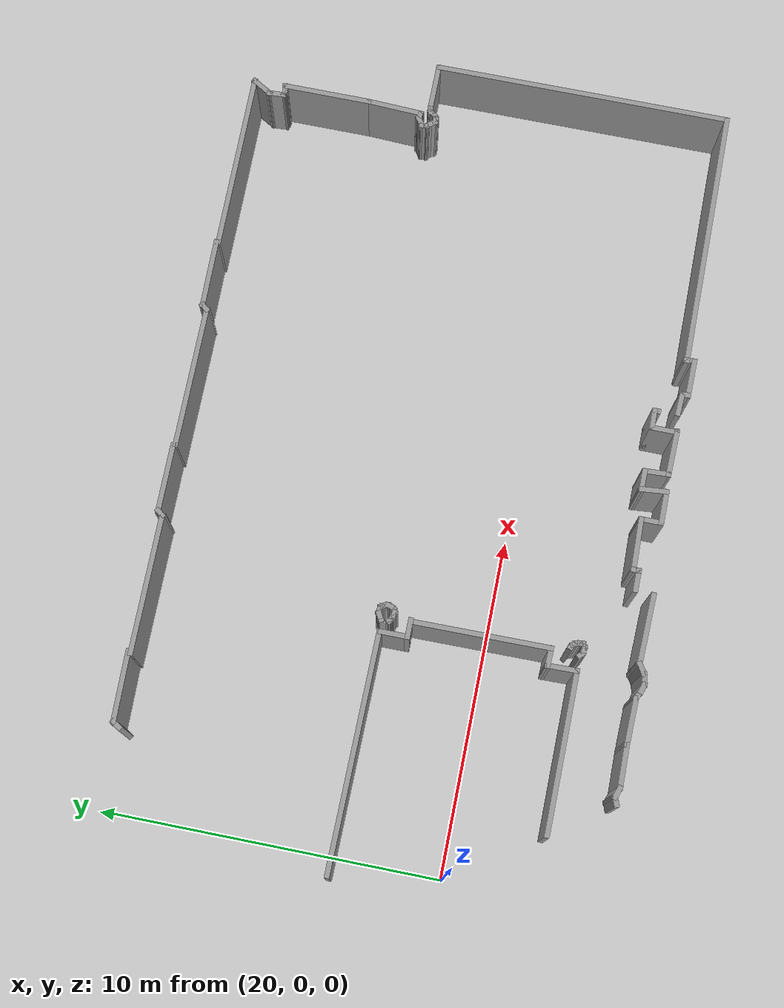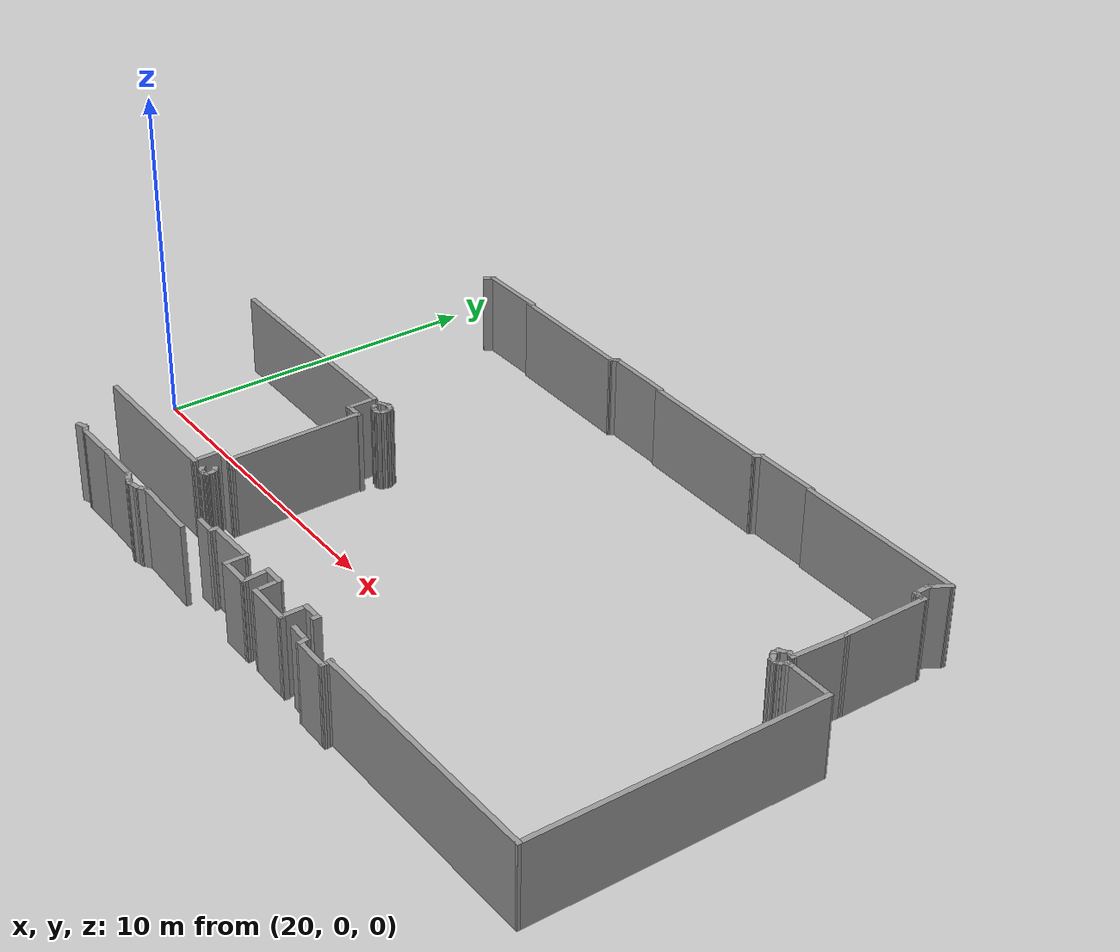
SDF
<sdf version="1.6">
 <model name="3_e">
  <pose>28.6843 2.78166 0 0 -0 0</pose>
  <link name="Wall_100">
   <collision name="Wall_100_Collision">
    <geometry><box><size>1.07773 0.15 2.5</size></box></geometry>
    <pose>0 0 1.25 0 -0 0</pose>
   </collision>
   <visual name="Wall_100_Visual">
    <pose>0 0 1.25 0 -0 0</pose>
    <geometry><box><size>1.07773 0.15 2.5</size></box></geometry>
    <material>
     <script><uri>file://media/materials/scripts/gazebo.material</uri><name>Gazebo/Grey</name></script>
     <ambient>1 1 1 1</ambient>
    </material>
   </visual>
   <pose>2.77623 -6.99337 0 0 -0 0</pose>
  </link>
  <link name="Wall_101">
   <collision name="Wall_101_Collision">
    <geometry><box><size>0.867395 0.15 2.5</size></box></geometry>
    <pose>0 0 1.25 0 -0 0</pose>
   </collision>
   <visual name="Wall_101_Visual">
    <pose>0 0 1.25 0 -0 0</pose>
    <geometry><box><size>0.867395 0.15 2.5</size></box></geometry>
    <material>
     <script><uri>file://media/materials/scripts/gazebo.material</uri><name>Gazebo/Grey</name></script>
     <ambient>1 1 1 1</ambient>
    </material>
   </visual>
   <pose>3.20967 -6.63596 0 0 -0 1.6557</pose>
  </link>
  <link name="Wall_102">
   <collision name="Wall_102_Collision">
    <geometry><box><size>0.697515 0.15 2.5</size></box></geometry>
    <pose>0 0 1.25 0 -0 0</pose>
   </collision>
   <visual name="Wall_102_Visual">
    <pose>0 0 1.25 0 -0 0</pose>
    <geometry><box><size>0.697515 0.15 2.5</size></box></geometry>
    <material>
     <script><uri>file://media/materials/scripts/gazebo.material</uri><name>Gazebo/Grey</name></script>
     <ambient>1 1 1 1</ambient>
    </material>
   </visual>
   <pose>3.45301 -6.27856 0 0 -0 0</pose>
  </link>
  <link name="Wall_103">
   <collision name="Wall_103_Collision">
    <geometry><box><size>0.835069 0.15 2.5</size></box></geometry>
    <pose>0 0 1.25 0 -0 0</pose>
   </collision>
   <visual name="Wall_103_Visual">
    <pose>0 0 1.25 0 -0 0</pose>
    <geometry><box><size>0.835069 0.15 2.5</size></box></geometry>
    <material>
     <script><uri>file://media/materials/scripts/gazebo.material</uri><name>Gazebo/Grey</name></script>
     <ambient>1 1 1 1</ambient>
    </material>
   </visual>
   <pose>3.74198 -6.62076 0 0 0 -1.52638</pose>
  </link>
  <link name="Wall_104">
   <collision name="Wall_104_Collision">
    <geometry><box><size>1.45831 0.15 2.5</size></box></geometry>
    <pose>0 0 1.25 0 -0 0</pose>
   </collision>
   <visual name="Wall_104_Visual">
    <pose>0 0 1.25 0 -0 0</pose>
    <geometry><box><size>1.45831 0.15 2.5</size></box></geometry>
    <material>
     <script><uri>file://media/materials/scripts/gazebo.material</uri><name>Gazebo/Grey</name></script>
     <ambient>1 1 1 1</ambient>
    </material>
   </visual>
   <pose>4.41117 -6.97816 0 0 0 -0.023252</pose>
  </link>
  <link name="Wall_106">
   <collision name="Wall_106_Collision">
    <geometry><box><size>0.88002 0.15 2.5</size></box></geometry>
    <pose>0 0 1.25 0 -0 0</pose>
   </collision>
   <visual name="Wall_106_Visual">
    <pose>0 0 1.25 0 -0 0</pose>
    <geometry><box><size>0.88002 0.15 2.5</size></box></geometry>
    <material>
     <script><uri>file://media/materials/scripts/gazebo.material</uri><name>Gazebo/Grey</name></script>
     <ambient>1 1 1 1</ambient>
    </material>
   </visual>
   <pose>5.03472 -6.62836 0 0 -0 1.5708</pose>
  </link>
  <link name="Wall_107">
   <collision name="Wall_107_Collision">
    <geometry><box><size>0.667097 0.15 2.5</size></box></geometry>
    <pose>0 0 1.25 0 -0 0</pose>
   </collision>
   <visual name="Wall_107_Visual">
    <pose>0 0 1.25 0 -0 0</pose>
    <geometry><box><size>0.667097 0.15 2.5</size></box></geometry>
    <material>
     <script><uri>file://media/materials/scripts/gazebo.material</uri><name>Gazebo/Grey</name></script>
     <ambient>1 1 1 1</ambient>
    </material>
   </visual>
   <pose>5.29327 -6.26335 0 0 -0 0</pose>
  </link>
  <link name="Wall_108">
   <collision name="Wall_108_Collision">
    <geometry><box><size>0.25 0.15 2.5</size></box></geometry>
    <pose>0 0 1.25 0 -0 0</pose>
   </collision>
   <visual name="Wall_108_Visual">
    <pose>0 0 1.25 0 -0 0</pose>
    <geometry><box><size>0.25 0.15 2.5</size></box></geometry>
    <material>
     <script><uri>file://media/materials/scripts/gazebo.material</uri><name>Gazebo/Grey</name></script>
     <ambient>1 1 1 1</ambient>
    </material>
   </visual>
   <pose>5.55182 -6.31335 0 0 0 -1.5708</pose>
  </link>
  <link name="Wall_110">
   <collision name="Wall_110_Collision">
    <geometry><box><size>0.728732 0.15 2.5</size></box></geometry>
    <pose>0 0 1.25 0 -0 0</pose>
   </collision>
   <visual name="Wall_110_Visual">
    <pose>0 0 1.25 0 -0 0</pose>
    <geometry><box><size>0.728732 0.15 2.5</size></box></geometry>
    <material>
     <script><uri>file://media/materials/scripts/gazebo.material</uri><name>Gazebo/Grey</name></script>
     <ambient>1 1 1 1</ambient>
    </material>
   </visual>
   <pose>5.88641 -6.94774 0 0 0 -0.052583</pose>
  </link>
  <link name="Wall_111">
   <collision name="Wall_111_Collision">
    <geometry><box><size>0.317986 0.15 2.5</size></box></geometry>
    <pose>0 0 1.25 0 -0 0</pose>
   </collision>
   <visual name="Wall_111_Visual">
    <pose>0 0 1.25 0 -0 0</pose>
    <geometry><box><size>0.317986 0.15 2.5</size></box></geometry>
    <material>
     <script><uri>file://media/materials/scripts/gazebo.material</uri><name>Gazebo/Grey</name></script>
     <ambient>1 1 1 1</ambient>
    </material>
   </visual>
   <pose>6.18299 -7.0466 0 0 0 -1.48014</pose>
  </link>
  <link name="Wall_112">
   <collision name="Wall_112_Collision">
    <geometry><box><size>1.19951 0.15 2.5</size></box></geometry>
    <pose>0 0 1.25 0 -0 0</pose>
   </collision>
   <visual name="Wall_112_Visual">
    <pose>0 0 1.25 0 -0 0</pose>
    <geometry><box><size>1.19951 0.15 2.5</size></box></geometry>
    <material>
     <script><uri>file://media/materials/scripts/gazebo.material</uri><name>Gazebo/Grey</name></script>
     <ambient>1 1 1 1</ambient>
    </material>
   </visual>
   <pose>6.71529 -7.13785 0 0 0 -0.014492</pose>
  </link>
  <link name="Wall_113">
   <collision name="Wall_113_Collision">
    <geometry><box><size>0.39334 0.15 2.5</size></box></geometry>
    <pose>0 0 1.25 0 -0 0</pose>
   </collision>
   <visual name="Wall_113_Visual">
    <pose>0 0 1.25 0 -0 0</pose>
    <geometry><box><size>0.39334 0.15 2.5</size></box></geometry>
    <material>
     <script><uri>file://media/materials/scripts/gazebo.material</uri><name>Gazebo/Grey</name></script>
     <ambient>1 1 1 1</ambient>
    </material>
   </visual>
   <pose>7.23999 -7.02379 0 0 -0 1.5708</pose>
  </link>
  <link name="Wall_117">
   <collision name="Wall_117_Collision">
    <geometry><box><size>7.80038 0.15 2.5</size></box></geometry>
    <pose>0 0 1.25 0 -0 0</pose>
   </collision>
   <visual name="Wall_117_Visual">
    <pose>0 0 1.25 0 -0 0</pose>
    <geometry><box><size>7.80038 0.15 2.5</size></box></geometry>
    <material>
     <script><uri>file://media/materials/scripts/gazebo.material</uri><name>Gazebo/Grey</name></script>
     <ambient>1 1 1 1</ambient>
    </material>
   </visual>
   <pose>11.0437 -6.90568 0 0 -0 0.005964</pose>
  </link>
  <link name="Wall_119">
   <collision name="Wall_119_Collision">
    <geometry><box><size>8.94846 0.15 2.5</size></box></geometry>
    <pose>0 0 1.25 0 -0 0</pose>
   </collision>
   <visual name="Wall_119_Visual">
    <pose>0 0 1.25 0 -0 0</pose>
    <geometry><box><size>8.94846 0.15 2.5</size></box></geometry>
    <material>
     <script><uri>file://media/materials/scripts/gazebo.material</uri><name>Gazebo/Grey</name></script>
     <ambient>1 1 1 1</ambient>
    </material>
   </visual>
   <pose>14.858 -2.48364 0 0 -0 1.57324</pose>
  </link>
  <link name="Wall_121">
   <collision name="Wall_121_Collision">
    <geometry><box><size>1.5 0.15 2.5</size></box></geometry>
    <pose>0 0 1.25 0 -0 0</pose>
   </collision>
   <visual name="Wall_121_Visual">
    <pose>0 0 1.25 0 -0 0</pose>
    <geometry><box><size>1.5 0.15 2.5</size></box></geometry>
    <material>
     <script><uri>file://media/materials/scripts/gazebo.material</uri><name>Gazebo/Grey</name></script>
     <ambient>1 1 1 1</ambient>
    </material>
   </visual>
   <pose>14.1722 1.91559 0 0 -0 3.14159</pose>
  </link>
  <link name="Wall_122">
   <collision name="Wall_122_Collision">
    <geometry><box><size>0.274193 0.15 2.5</size></box></geometry>
    <pose>0 0 1.25 0 -0 0</pose>
   </collision>
   <visual name="Wall_122_Visual">
    <pose>0 0 1.25 0 -0 0</pose>
    <geometry><box><size>0.274193 0.15 2.5</size></box></geometry>
    <material>
     <script><uri>file://media/materials/scripts/gazebo.material</uri><name>Gazebo/Grey</name></script>
     <ambient>1 1 1 1</ambient>
    </material>
   </visual>
   <pose>13.4377 1.8981 0 0 0 -2.85607</pose>
  </link>
  <link name="Wall_123">
   <collision name="Wall_123_Collision">
    <geometry><box><size>0.315001 0.15 2.5</size></box></geometry>
    <pose>0 0 1.25 0 -0 0</pose>
   </collision>
   <visual name="Wall_123_Visual">
    <pose>0 0 1.25 0 -0 0</pose>
    <geometry><box><size>0.315001 0.15 2.5</size></box></geometry>
    <material>
     <script><uri>file://media/materials/scripts/gazebo.material</uri><name>Gazebo/Grey</name></script>
     <ambient>1 1 1 1</ambient>
    </material>
   </visual>
   <pose>13.3344 1.81065 0 0 0 -2.1294</pose>
  </link>
  <link name="Wall_124">
   <collision name="Wall_124_Collision">
    <geometry><box><size>0.251984 0.15 2.5</size></box></geometry>
    <pose>0 0 1.25 0 -0 0</pose>
   </collision>
   <visual name="Wall_124_Visual">
    <pose>0 0 1.25 0 -0 0</pose>
    <geometry><box><size>0.251984 0.15 2.5</size></box></geometry>
    <material>
     <script><uri>file://media/materials/scripts/gazebo.material</uri><name>Gazebo/Grey</name></script>
     <ambient>1 1 1 1</ambient>
    </material>
   </visual>
   <pose>13.2469 1.71446 0 0 0 -2.60117</pose>
  </link>
  <link name="Wall_125">
   <collision name="Wall_125_Collision">
    <geometry><box><size>0.27243 0.15 2.5</size></box></geometry>
    <pose>0 0 1.25 0 -0 0</pose>
   </collision>
   <visual name="Wall_125_Visual">
    <pose>0 0 1.25 0 -0 0</pose>
    <geometry><box><size>0.27243 0.15 2.5</size></box></geometry>
    <material>
     <script><uri>file://media/materials/scripts/gazebo.material</uri><name>Gazebo/Grey</name></script>
     <ambient>1 1 1 1</ambient>
    </material>
   </visual>
   <pose>13.142 1.68822 0 0 -0 3.14159</pose>
  </link>
  <link name="Wall_126">
   <collision name="Wall_126_Collision">
    <geometry><box><size>0.300455 0.15 2.5</size></box></geometry>
    <pose>0 0 1.25 0 -0 0</pose>
   </collision>
   <visual name="Wall_126_Visual">
    <pose>0 0 1.25 0 -0 0</pose>
    <geometry><box><size>0.300455 0.15 2.5</size></box></geometry>
    <material>
     <script><uri>file://media/materials/scripts/gazebo.material</uri><name>Gazebo/Grey</name></script>
     <ambient>1 1 1 1</ambient>
    </material>
   </visual>
   <pose>13.037 1.74944 0 0 -0 2.19105</pose>
  </link>
  <link name="Wall_127">
   <collision name="Wall_127_Collision">
    <geometry><box><size>0.273673 0.15 2.5</size></box></geometry>
    <pose>0 0 1.25 0 -0 0</pose>
   </collision>
   <visual name="Wall_127_Visual">
    <pose>0 0 1.25 0 -0 0</pose>
    <geometry><box><size>0.273673 0.15 2.5</size></box></geometry>
    <material>
     <script><uri>file://media/materials/scripts/gazebo.material</uri><name>Gazebo/Grey</name></script>
     <ambient>1 1 1 1</ambient>
    </material>
   </visual>
   <pose>12.9496 1.85438 0 0 -0 2.35619</pose>
  </link>
  <link name="Wall_128">
   <collision name="Wall_128_Collision">
    <geometry><box><size>0.307411 0.15 2.5</size></box></geometry>
    <pose>0 0 1.25 0 -0 0</pose>
   </collision>
   <visual name="Wall_128_Visual">
    <pose>0 0 1.25 0 -0 0</pose>
    <geometry><box><size>0.307411 0.15 2.5</size></box></geometry>
    <material>
     <script><uri>file://media/materials/scripts/gazebo.material</uri><name>Gazebo/Grey</name></script>
     <ambient>1 1 1 1</ambient>
    </material>
   </visual>
   <pose>12.9058 1.97681 0 0 -0 1.5708</pose>
  </link>
  <link name="Wall_129">
   <collision name="Wall_129_Collision">
    <geometry><box><size>0.276123 0.15 2.5</size></box></geometry>
    <pose>0 0 1.25 0 -0 0</pose>
   </collision>
   <visual name="Wall_129_Visual">
    <pose>0 0 1.25 0 -0 0</pose>
    <geometry><box><size>0.276123 0.15 2.5</size></box></geometry>
    <material>
     <script><uri>file://media/materials/scripts/gazebo.material</uri><name>Gazebo/Grey</name></script>
     <ambient>1 1 1 1</ambient>
    </material>
   </visual>
   <pose>12.9583 2.09049 0 0 -0 0.588003</pose>
  </link>
  <link name="Wall_130">
   <collision name="Wall_130_Collision">
    <geometry><box><size>0.276123 0.15 2.5</size></box></geometry>
    <pose>0 0 1.25 0 -0 0</pose>
   </collision>
   <visual name="Wall_130_Visual">
    <pose>0 0 1.25 0 -0 0</pose>
    <geometry><box><size>0.276123 0.15 2.5</size></box></geometry>
    <material>
     <script><uri>file://media/materials/scripts/gazebo.material</uri><name>Gazebo/Grey</name></script>
     <ambient>1 1 1 1</ambient>
    </material>
   </visual>
   <pose>13.0633 2.16045 0 0 -0 0.588003</pose>
  </link>
  <link name="Wall_131">
   <collision name="Wall_131_Collision">
    <geometry><box><size>0.31125 0.15 2.5</size></box></geometry>
    <pose>0 0 1.25 0 -0 0</pose>
   </collision>
   <visual name="Wall_131_Visual">
    <pose>0 0 1.25 0 -0 0</pose>
    <geometry><box><size>0.31125 0.15 2.5</size></box></geometry>
    <material>
     <script><uri>file://media/materials/scripts/gazebo.material</uri><name>Gazebo/Grey</name></script>
     <ambient>1 1 1 1</ambient>
    </material>
   </visual>
   <pose>13.1944 2.17794 0 0 0 -0.218669</pose>
  </link>
  <link name="Wall_132">
   <collision name="Wall_132_Collision">
    <geometry><box><size>1.76061 0.15 2.5</size></box></geometry>
    <pose>0 0 1.25 0 -0 0</pose>
   </collision>
   <visual name="Wall_132_Visual">
    <pose>0 0 1.25 0 -0 0</pose>
    <geometry><box><size>1.76061 0.15 2.5</size></box></geometry>
    <material>
     <script><uri>file://media/materials/scripts/gazebo.material</uri><name>Gazebo/Grey</name></script>
     <ambient>1 1 1 1</ambient>
    </material>
   </visual>
   <pose>13.3081 2.965 0 0 -0 1.52734</pose>
  </link>
  <link name="Wall_134">
   <collision name="Wall_134_Collision">
    <geometry><box><size>2.72104 0.15 2.5</size></box></geometry>
    <pose>0 0 1.25 0 -0 0</pose>
   </collision>
   <visual name="Wall_134_Visual">
    <pose>0 0 1.25 0 -0 0</pose>
    <geometry><box><size>2.72104 0.15 2.5</size></box></geometry>
    <material>
     <script><uri>file://media/materials/scripts/gazebo.material</uri><name>Gazebo/Grey</name></script>
     <ambient>1 1 1 1</ambient>
    </material>
   </visual>
   <pose>13.3431 5.05506 0 0 -0 1.5708</pose>
  </link>
  <link name="Wall_135">
   <collision name="Wall_135_Collision">
    <geometry><box><size>0.25 0.15 2.5</size></box></geometry>
    <pose>0 0 1.25 0 -0 0</pose>
   </collision>
   <visual name="Wall_135_Visual">
    <pose>0 0 1.25 0 -0 0</pose>
    <geometry><box><size>0.25 0.15 2.5</size></box></geometry>
    <material>
     <script><uri>file://media/materials/scripts/gazebo.material</uri><name>Gazebo/Grey</name></script>
     <ambient>1 1 1 1</ambient>
    </material>
   </visual>
   <pose>13.2948 6.32764 0 0 0 -2.87979</pose>
  </link>
  <link name="Wall_136">
   <collision name="Wall_136_Collision">
    <geometry><box><size>0.25 0.15 2.5</size></box></geometry>
    <pose>0 0 1.25 0 -0 0</pose>
   </collision>
   <visual name="Wall_136_Visual">
    <pose>0 0 1.25 0 -0 0</pose>
    <geometry><box><size>0.25 0.15 2.5</size></box></geometry>
    <material>
     <script><uri>file://media/materials/scripts/gazebo.material</uri><name>Gazebo/Grey</name></script>
     <ambient>1 1 1 1</ambient>
    </material>
   </visual>
   <pose>13.1965 6.3147 0 0 -0 3.14159</pose>
  </link>
  <link name="Wall_137">
   <collision name="Wall_137_Collision">
    <geometry><box><size>0.25 0.15 2.5</size></box></geometry>
    <pose>0 0 1.25 0 -0 0</pose>
   </collision>
   <visual name="Wall_137_Visual">
    <pose>0 0 1.25 0 -0 0</pose>
    <geometry><box><size>0.25 0.15 2.5</size></box></geometry>
    <material>
     <script><uri>file://media/materials/scripts/gazebo.material</uri><name>Gazebo/Grey</name></script>
     <ambient>1 1 1 1</ambient>
    </material>
   </visual>
   <pose>13.0982 6.32764 0 0 -0 2.87979</pose>
  </link>
  <link name="Wall_138">
   <collision name="Wall_138_Collision">
    <geometry><box><size>0.15 0.15 2.5</size></box></geometry>
    <pose>0 0 1.25 0 -0 0</pose>
   </collision>
   <visual name="Wall_138_Visual">
    <pose>0 0 1.25 0 -0 0</pose>
    <geometry><box><size>0.15 0.15 2.5</size></box></geometry>
    <material>
     <script><uri>file://media/materials/scripts/gazebo.material</uri><name>Gazebo/Grey</name></script>
     <ambient>1 1 1 1</ambient>
    </material>
   </visual>
   <pose>13.0499 6.34058 0 0 -0 0</pose>
  </link>
  <link name="Wall_139">
   <collision name="Wall_139_Collision">
    <geometry><box><size>0.568581 0.15 2.5</size></box></geometry>
    <pose>0 0 1.25 0 -0 0</pose>
   </collision>
   <visual name="Wall_139_Visual">
    <pose>0 0 1.25 0 -0 0</pose>
    <geometry><box><size>0.568581 0.15 2.5</size></box></geometry>
    <material>
     <script><uri>file://media/materials/scripts/gazebo.material</uri><name>Gazebo/Grey</name></script>
     <ambient>1 1 1 1</ambient>
    </material>
   </visual>
   <pose>13.0396 6.54962 0 0 -0 1.62</pose>
  </link>
  <link name="Wall_140">
   <collision name="Wall_140_Collision">
    <geometry><box><size>0.75 0.15 2.5</size></box></geometry>
    <pose>0 0 1.25 0 -0 0</pose>
   </collision>
   <visual name="Wall_140_Visual">
    <pose>0 0 1.25 0 -0 0</pose>
    <geometry><box><size>0.75 0.15 2.5</size></box></geometry>
    <material>
     <script><uri>file://media/materials/scripts/gazebo.material</uri><name>Gazebo/Grey</name></script>
     <ambient>1 1 1 1</ambient>
    </material>
   </visual>
   <pose>13.1693 7.00846 0 0 -0 1.0472</pose>
  </link>
  <link name="Wall_142">
   <collision name="Wall_142_Collision">
    <geometry><box><size>5.3732 0.15 2.5</size></box></geometry>
    <pose>0 0 1.25 0 -0 0</pose>
   </collision>
   <visual name="Wall_142_Visual">
    <pose>0 0 1.25 0 -0 0</pose>
    <geometry><box><size>5.3732 0.15 2.5</size></box></geometry>
    <material>
     <script><uri>file://media/materials/scripts/gazebo.material</uri><name>Gazebo/Grey</name></script>
     <ambient>1 1 1 1</ambient>
    </material>
   </visual>
   <pose>10.7078 7.25589 0 0 0 -3.13685</pose>
  </link>
  <link name="Wall_144">
   <collision name="Wall_144_Collision">
    <geometry><box><size>2.13953 0.15 2.5</size></box></geometry>
    <pose>0 0 1.25 0 -0 0</pose>
   </collision>
   <visual name="Wall_144_Visual">
    <pose>0 0 1.25 0 -0 0</pose>
    <geometry><box><size>2.13953 0.15 2.5</size></box></geometry>
    <material>
     <script><uri>file://media/materials/scripts/gazebo.material</uri><name>Gazebo/Grey</name></script>
     <ambient>1 1 1 1</ambient>
    </material>
   </visual>
   <pose>7.103 7.28679 0 0 -0 0.01156</pose>
  </link>
  <link name="Wall_146">
   <collision name="Wall_146_Collision">
    <geometry><box><size>4.3015 0.15 2.5</size></box></geometry>
    <pose>0 0 1.25 0 -0 0</pose>
   </collision>
   <visual name="Wall_146_Visual">
    <pose>0 0 1.25 0 -0 0</pose>
    <geometry><box><size>4.3015 0.15 2.5</size></box></geometry>
    <material>
     <script><uri>file://media/materials/scripts/gazebo.material</uri><name>Gazebo/Grey</name></script>
     <ambient>1 1 1 1</ambient>
    </material>
   </visual>
   <pose>3.9175 7.12579 0 0 -0 0</pose>
  </link>
  <link name="Wall_147">
   <collision name="Wall_147_Collision">
    <geometry><box><size>0.338614 0.15 2.5</size></box></geometry>
    <pose>0 0 1.25 0 -0 0</pose>
   </collision>
   <visual name="Wall_147_Visual">
    <pose>0 0 1.25 0 -0 0</pose>
    <geometry><box><size>0.338614 0.15 2.5</size></box></geometry>
    <material>
     <script><uri>file://media/materials/scripts/gazebo.material</uri><name>Gazebo/Grey</name></script>
     <ambient>1 1 1 1</ambient>
    </material>
   </visual>
   <pose>6.05075 7.20054 0 0 -0 0.915101</pose>
  </link>
  <link name="Wall_149">
   <collision name="Wall_149_Collision">
    <geometry><box><size>2.128 0.15 2.5</size></box></geometry>
    <pose>0 0 1.25 0 -0 0</pose>
   </collision>
   <visual name="Wall_149_Visual">
    <pose>0 0 1.25 0 -0 0</pose>
    <geometry><box><size>2.128 0.15 2.5</size></box></geometry>
    <material>
     <script><uri>file://media/materials/scripts/gazebo.material</uri><name>Gazebo/Grey</name></script>
     <ambient>1 1 1 1</ambient>
    </material>
   </visual>
   <pose>0.829752 7.18329 0 0 -0 0</pose>
  </link>
  <link name="Wall_151">
   <collision name="Wall_151_Collision">
    <geometry><box><size>4.1865 0.15 2.5</size></box></geometry>
    <pose>0 0 1.25 0 -0 0</pose>
   </collision>
   <visual name="Wall_151_Visual">
    <pose>0 0 1.25 0 -0 0</pose>
    <geometry><box><size>4.1865 0.15 2.5</size></box></geometry>
    <material>
     <script><uri>file://media/materials/scripts/gazebo.material</uri><name>Gazebo/Grey</name></script>
     <ambient>1 1 1 1</ambient>
    </material>
   </visual>
   <pose>-2.2925 7.03379 0 0 -0 0</pose>
  </link>
  <link name="Wall_152">
   <collision name="Wall_152_Collision">
    <geometry><box><size>0.338614 0.15 2.5</size></box></geometry>
    <pose>0 0 1.25 0 -0 0</pose>
   </collision>
   <visual name="Wall_152_Visual">
    <pose>0 0 1.25 0 -0 0</pose>
    <geometry><box><size>0.338614 0.15 2.5</size></box></geometry>
    <material>
     <script><uri>file://media/materials/scripts/gazebo.material</uri><name>Gazebo/Grey</name></script>
     <ambient>1 1 1 1</ambient>
    </material>
   </visual>
   <pose>-0.216747 7.10854 0 0 -0 0.915101</pose>
  </link>
  <link name="Wall_154">
   <collision name="Wall_154_Collision">
    <geometry><box><size>2.16263 0.15 2.5</size></box></geometry>
    <pose>0 0 1.25 0 -0 0</pose>
   </collision>
   <visual name="Wall_154_Visual">
    <pose>0 0 1.25 0 -0 0</pose>
    <geometry><box><size>2.16263 0.15 2.5</size></box></geometry>
    <material>
     <script><uri>file://media/materials/scripts/gazebo.material</uri><name>Gazebo/Grey</name></script>
     <ambient>1 1 1 1</ambient>
    </material>
   </visual>
   <pose>-5.271 7.08554 0 0 -0 0.017141</pose>
  </link>
  <link name="Wall_157">
   <collision name="Wall_157_Collision">
    <geometry><box><size>0.382857 0.15 2.5</size></box></geometry>
    <pose>0 0 1.25 0 -0 0</pose>
   </collision>
   <visual name="Wall_157_Visual">
    <pose>0 0 1.25 0 -0 0</pose>
    <geometry><box><size>0.382857 0.15 2.5</size></box></geometry>
    <material>
     <script><uri>file://media/materials/scripts/gazebo.material</uri><name>Gazebo/Grey</name></script>
     <ambient>1 1 1 1</ambient>
    </material>
   </visual>
   <pose>-6.3405 6.97054 0 0 -0 0.996491</pose>
  </link>
  <link name="Wall_179">
   <collision name="Wall_179_Collision">
    <geometry><box><size>0.25 0.15 2.5</size></box></geometry>
    <pose>0 0 1.25 0 -0 0</pose>
   </collision>
   <visual name="Wall_179_Visual">
    <pose>0 0 1.25 0 -0 0</pose>
    <geometry><box><size>0.25 0.15 2.5</size></box></geometry>
    <material>
     <script><uri>file://media/materials/scripts/gazebo.material</uri><name>Gazebo/Grey</name></script>
     <ambient>1 1 1 1</ambient>
    </material>
   </visual>
   <pose>-1.94886 0.330471 0 0 -0 0.523599</pose>
  </link>
  <link name="Wall_180">
   <collision name="Wall_180_Collision">
    <geometry><box><size>0.25 0.15 2.5</size></box></geometry>
    <pose>0 0 1.25 0 -0 0</pose>
   </collision>
   <visual name="Wall_180_Visual">
    <pose>0 0 1.25 0 -0 0</pose>
    <geometry><box><size>0.25 0.15 2.5</size></box></geometry>
    <material>
     <script><uri>file://media/materials/scripts/gazebo.material</uri><name>Gazebo/Grey</name></script>
     <ambient>1 1 1 1</ambient>
    </material>
   </visual>
   <pose>-1.86226 0.380471 0 0 -0 0.523599</pose>
  </link>
  <link name="Wall_181">
   <collision name="Wall_181_Collision">
    <geometry><box><size>0.25 0.15 2.5</size></box></geometry>
    <pose>0 0 1.25 0 -0 0</pose>
   </collision>
   <visual name="Wall_181_Visual">
    <pose>0 0 1.25 0 -0 0</pose>
    <geometry><box><size>0.25 0.15 2.5</size></box></geometry>
    <material>
     <script><uri>file://media/materials/scripts/gazebo.material</uri><name>Gazebo/Grey</name></script>
     <ambient>1 1 1 1</ambient>
    </material>
   </visual>
   <pose>-1.76896 0.405471 0 0 -0 0</pose>
  </link>
  <link name="Wall_182">
   <collision name="Wall_182_Collision">
    <geometry><box><size>0.25 0.15 2.5</size></box></geometry>
    <pose>0 0 1.25 0 -0 0</pose>
   </collision>
   <visual name="Wall_182_Visual">
    <pose>0 0 1.25 0 -0 0</pose>
    <geometry><box><size>0.25 0.15 2.5</size></box></geometry>
    <material>
     <script><uri>file://media/materials/scripts/gazebo.material</uri><name>Gazebo/Grey</name></script>
     <ambient>1 1 1 1</ambient>
    </material>
   </visual>
   <pose>-1.67066 0.39253 0 0 0 -0.261799</pose>
  </link>
  <link name="Wall_183">
   <collision name="Wall_183_Collision">
    <geometry><box><size>0.25 0.15 2.5</size></box></geometry>
    <pose>0 0 1.25 0 -0 0</pose>
   </collision>
   <visual name="Wall_183_Visual">
    <pose>0 0 1.25 0 -0 0</pose>
    <geometry><box><size>0.25 0.15 2.5</size></box></geometry>
    <material>
     <script><uri>file://media/materials/scripts/gazebo.material</uri><name>Gazebo/Grey</name></script>
     <ambient>1 1 1 1</ambient>
    </material>
   </visual>
   <pose>-1.59736 0.336288 0 0 0 -1.0472</pose>
  </link>
  <link name="Wall_184">
   <collision name="Wall_184_Collision">
    <geometry><box><size>0.25 0.15 2.5</size></box></geometry>
    <pose>0 0 1.25 0 -0 0</pose>
   </collision>
   <visual name="Wall_184_Visual">
    <pose>0 0 1.25 0 -0 0</pose>
    <geometry><box><size>0.25 0.15 2.5</size></box></geometry>
    <material>
     <script><uri>file://media/materials/scripts/gazebo.material</uri><name>Gazebo/Grey</name></script>
     <ambient>1 1 1 1</ambient>
    </material>
   </visual>
   <pose>-1.55942 0.244691 0 0 0 -1.309</pose>
  </link>
  <link name="Wall_185">
   <collision name="Wall_185_Collision">
    <geometry><box><size>0.25 0.15 2.5</size></box></geometry>
    <pose>0 0 1.25 0 -0 0</pose>
   </collision>
   <visual name="Wall_185_Visual">
    <pose>0 0 1.25 0 -0 0</pose>
    <geometry><box><size>0.25 0.15 2.5</size></box></geometry>
    <material>
     <script><uri>file://media/materials/scripts/gazebo.material</uri><name>Gazebo/Grey</name></script>
     <ambient>1 1 1 1</ambient>
    </material>
   </visual>
   <pose>-1.55942 0.148098 0 0 0 -1.8326</pose>
  </link>
  <link name="Wall_186">
   <collision name="Wall_186_Collision">
    <geometry><box><size>0.25 0.15 2.5</size></box></geometry>
    <pose>0 0 1.25 0 -0 0</pose>
   </collision>
   <visual name="Wall_186_Visual">
    <pose>0 0 1.25 0 -0 0</pose>
    <geometry><box><size>0.25 0.15 2.5</size></box></geometry>
    <material>
     <script><uri>file://media/materials/scripts/gazebo.material</uri><name>Gazebo/Grey</name></script>
     <ambient>1 1 1 1</ambient>
    </material>
   </visual>
   <pose>-1.59736 0.0565 0 0 0 -2.0944</pose>
  </link>
  <link name="Wall_187">
   <collision name="Wall_187_Collision">
    <geometry><box><size>0.25 0.15 2.5</size></box></geometry>
    <pose>0 0 1.25 0 -0 0</pose>
   </collision>
   <visual name="Wall_187_Visual">
    <pose>0 0 1.25 0 -0 0</pose>
    <geometry><box><size>0.25 0.15 2.5</size></box></geometry>
    <material>
     <script><uri>file://media/materials/scripts/gazebo.material</uri><name>Gazebo/Grey</name></script>
     <ambient>1 1 1 1</ambient>
    </material>
   </visual>
   <pose>-1.66566 -0.011801 0 0 0 -2.61799</pose>
  </link>
  <link name="Wall_188">
   <collision name="Wall_188_Collision">
    <geometry><box><size>0.25 0.15 2.5</size></box></geometry>
    <pose>0 0 1.25 0 -0 0</pose>
   </collision>
   <visual name="Wall_188_Visual">
    <pose>0 0 1.25 0 -0 0</pose>
    <geometry><box><size>0.25 0.15 2.5</size></box></geometry>
    <material>
     <script><uri>file://media/materials/scripts/gazebo.material</uri><name>Gazebo/Grey</name></script>
     <ambient>1 1 1 1</ambient>
    </material>
   </visual>
   <pose>-1.75726 -0.02386 0 0 -0 2.87979</pose>
  </link>
  <link name="Wall_189">
   <collision name="Wall_189_Collision">
    <geometry><box><size>0.25 0.15 2.5</size></box></geometry>
    <pose>0 0 1.25 0 -0 0</pose>
   </collision>
   <visual name="Wall_189_Visual">
    <pose>0 0 1.25 0 -0 0</pose>
    <geometry><box><size>0.25 0.15 2.5</size></box></geometry>
    <material>
     <script><uri>file://media/materials/scripts/gazebo.material</uri><name>Gazebo/Grey</name></script>
     <ambient>1 1 1 1</ambient>
    </material>
   </visual>
   <pose>-1.85386 0.002022 0 0 -0 2.87979</pose>
  </link>
  <link name="Wall_190">
   <collision name="Wall_190_Collision">
    <geometry><box><size>0.257715 0.15 2.5</size></box></geometry>
    <pose>0 0 1.25 0 -0 0</pose>
   </collision>
   <visual name="Wall_190_Visual">
    <pose>0 0 1.25 0 -0 0</pose>
    <geometry><box><size>0.257715 0.15 2.5</size></box></geometry>
    <material>
     <script><uri>file://media/materials/scripts/gazebo.material</uri><name>Gazebo/Grey</name></script>
     <ambient>1 1 1 1</ambient>
    </material>
   </visual>
   <pose>-1.94613 0.046054 0 0 -0 2.5262</pose>
  </link>
  <link name="Wall_191">
   <collision name="Wall_191_Collision">
    <geometry><box><size>0.15 0.15 2.5</size></box></geometry>
    <pose>0 0 1.25 0 -0 0</pose>
   </collision>
   <visual name="Wall_191_Visual">
    <pose>0 0 1.25 0 -0 0</pose>
    <geometry><box><size>0.15 0.15 2.5</size></box></geometry>
    <material>
     <script><uri>file://media/materials/scripts/gazebo.material</uri><name>Gazebo/Grey</name></script>
     <ambient>1 1 1 1</ambient>
    </material>
   </visual>
   <pose>-1.9901 0.077145 0 0 -0 0</pose>
  </link>
  <link name="Wall_194">
   <collision name="Wall_194_Collision">
    <geometry><box><size>0.25 0.15 2.5</size></box></geometry>
    <pose>0 0 1.25 0 -0 0</pose>
   </collision>
   <visual name="Wall_194_Visual">
    <pose>0 0 1.25 0 -0 0</pose>
    <geometry><box><size>0.25 0.15 2.5</size></box></geometry>
    <material>
     <script><uri>file://media/materials/scripts/gazebo.material</uri><name>Gazebo/Grey</name></script>
     <ambient>1 1 1 1</ambient>
    </material>
   </visual>
   <pose>-1.66952 -5.11102 0 0 0 -0.523599</pose>
  </link>
  <link name="Wall_195">
   <collision name="Wall_195_Collision">
    <geometry><box><size>0.25 0.15 2.5</size></box></geometry>
    <pose>0 0 1.25 0 -0 0</pose>
   </collision>
   <visual name="Wall_195_Visual">
    <pose>0 0 1.25 0 -0 0</pose>
    <geometry><box><size>0.25 0.15 2.5</size></box></geometry>
    <material>
     <script><uri>file://media/materials/scripts/gazebo.material</uri><name>Gazebo/Grey</name></script>
     <ambient>1 1 1 1</ambient>
    </material>
   </visual>
   <pose>-1.60122 -5.17932 0 0 0 -1.0472</pose>
  </link>
  <link name="Wall_196">
   <collision name="Wall_196_Collision">
    <geometry><box><size>0.25 0.15 2.5</size></box></geometry>
    <pose>0 0 1.25 0 -0 0</pose>
   </collision>
   <visual name="Wall_196_Visual">
    <pose>0 0 1.25 0 -0 0</pose>
    <geometry><box><size>0.25 0.15 2.5</size></box></geometry>
    <material>
     <script><uri>file://media/materials/scripts/gazebo.material</uri><name>Gazebo/Grey</name></script>
     <ambient>1 1 1 1</ambient>
    </material>
   </visual>
   <pose>-1.56328 -5.27091 0 0 0 -1.309</pose>
  </link>
  <link name="Wall_197">
   <collision name="Wall_197_Collision">
    <geometry><box><size>0.25 0.15 2.5</size></box></geometry>
    <pose>0 0 1.25 0 -0 0</pose>
   </collision>
   <visual name="Wall_197_Visual">
    <pose>0 0 1.25 0 -0 0</pose>
    <geometry><box><size>0.25 0.15 2.5</size></box></geometry>
    <material>
     <script><uri>file://media/materials/scripts/gazebo.material</uri><name>Gazebo/Grey</name></script>
     <ambient>1 1 1 1</ambient>
    </material>
   </visual>
   <pose>-1.55034 -5.36921 0 0 0 -1.5708</pose>
  </link>
  <link name="Wall_198">
   <collision name="Wall_198_Collision">
    <geometry><box><size>0.25 0.15 2.5</size></box></geometry>
    <pose>0 0 1.25 0 -0 0</pose>
   </collision>
   <visual name="Wall_198_Visual">
    <pose>0 0 1.25 0 -0 0</pose>
    <geometry><box><size>0.25 0.15 2.5</size></box></geometry>
    <material>
     <script><uri>file://media/materials/scripts/gazebo.material</uri><name>Gazebo/Grey</name></script>
     <ambient>1 1 1 1</ambient>
    </material>
   </visual>
   <pose>-1.59364 -5.44421 0 0 0 -2.61799</pose>
  </link>
  <link name="Wall_199">
   <collision name="Wall_199_Collision">
    <geometry><box><size>0.25 0.15 2.5</size></box></geometry>
    <pose>0 0 1.25 0 -0 0</pose>
   </collision>
   <visual name="Wall_199_Visual">
    <pose>0 0 1.25 0 -0 0</pose>
    <geometry><box><size>0.25 0.15 2.5</size></box></geometry>
    <material>
     <script><uri>file://media/materials/scripts/gazebo.material</uri><name>Gazebo/Grey</name></script>
     <ambient>1 1 1 1</ambient>
    </material>
   </visual>
   <pose>-1.68694 -5.46921 0 0 -0 3.14159</pose>
  </link>
  <link name="Wall_200">
   <collision name="Wall_200_Collision">
    <geometry><box><size>0.25 0.15 2.5</size></box></geometry>
    <pose>0 0 1.25 0 -0 0</pose>
   </collision>
   <visual name="Wall_200_Visual">
    <pose>0 0 1.25 0 -0 0</pose>
    <geometry><box><size>0.25 0.15 2.5</size></box></geometry>
    <material>
     <script><uri>file://media/materials/scripts/gazebo.material</uri><name>Gazebo/Grey</name></script>
     <ambient>1 1 1 1</ambient>
    </material>
   </visual>
   <pose>-1.78524 -5.45627 0 0 -0 2.87979</pose>
  </link>
  <link name="Wall_201">
   <collision name="Wall_201_Collision">
    <geometry><box><size>0.25 0.15 2.5</size></box></geometry>
    <pose>0 0 1.25 0 -0 0</pose>
   </collision>
   <visual name="Wall_201_Visual">
    <pose>0 0 1.25 0 -0 0</pose>
    <geometry><box><size>0.25 0.15 2.5</size></box></geometry>
    <material>
     <script><uri>file://media/materials/scripts/gazebo.material</uri><name>Gazebo/Grey</name></script>
     <ambient>1 1 1 1</ambient>
    </material>
   </visual>
   <pose>-1.86889 -5.40797 0 0 -0 2.35619</pose>
  </link>
  <link name="Wall_27">
   <collision name="Wall_27_Collision">
    <geometry><box><size>7.05519 0.15 2.5</size></box></geometry>
    <pose>0 0 1.25 0 -0 0</pose>
   </collision>
   <visual name="Wall_27_Visual">
    <pose>0 0 1.25 0 -0 0</pose>
    <geometry><box><size>7.05519 0.15 2.5</size></box></geometry>
    <material>
     <script><uri>file://media/materials/scripts/gazebo.material</uri><name>Gazebo/Grey</name></script>
     <ambient>1 1 1 1</ambient>
    </material>
   </visual>
   <pose>-5.77759 0.323022 0 0 0 -0.011013</pose>
  </link>
  <link name="Wall_28">
   <collision name="Wall_28_Collision">
    <geometry><box><size>0.956064 0.15 2.5</size></box></geometry>
    <pose>0 0 1.25 0 -0 0</pose>
   </collision>
   <visual name="Wall_28_Visual">
    <pose>0 0 1.25 0 -0 0</pose>
    <geometry><box><size>0.956064 0.15 2.5</size></box></geometry>
    <material>
     <script><uri>file://media/materials/scripts/gazebo.material</uri><name>Gazebo/Grey</name></script>
     <ambient>1 1 1 1</ambient>
    </material>
   </visual>
   <pose>-2.3252 -0.118032 0 0 0 -1.5708</pose>
  </link>
  <link name="Wall_29">
   <collision name="Wall_29_Collision">
    <geometry><box><size>0.63668 0.15 2.5</size></box></geometry>
    <pose>0 0 1.25 0 -0 0</pose>
   </collision>
   <visual name="Wall_29_Visual">
    <pose>0 0 1.25 0 -0 0</pose>
    <geometry><box><size>0.63668 0.15 2.5</size></box></geometry>
    <material>
     <script><uri>file://media/materials/scripts/gazebo.material</uri><name>Gazebo/Grey</name></script>
     <ambient>1 1 1 1</ambient>
    </material>
   </visual>
   <pose>-2.08187 -0.521063 0 0 -0 0</pose>
  </link>
  <link name="Wall_32">
   <collision name="Wall_32_Collision">
    <geometry><box><size>4.18035 0.15 2.5</size></box></geometry>
    <pose>0 0 1.25 0 -0 0</pose>
   </collision>
   <visual name="Wall_32_Visual">
    <pose>0 0 1.25 0 -0 0</pose>
    <geometry><box><size>4.18035 0.15 2.5</size></box></geometry>
    <material>
     <script><uri>file://media/materials/scripts/gazebo.material</uri><name>Gazebo/Grey</name></script>
     <ambient>1 1 1 1</ambient>
    </material>
   </visual>
   <pose>-1.86332 -2.5411 0 0 0 -1.56325</pose>
  </link>
  <link name="Wall_33">
   <collision name="Wall_33_Collision">
    <geometry><box><size>0.652119 0.15 2.5</size></box></geometry>
    <pose>0 0 1.25 0 -0 0</pose>
   </collision>
   <visual name="Wall_33_Visual">
    <pose>0 0 1.25 0 -0 0</pose>
    <geometry><box><size>0.652119 0.15 2.5</size></box></geometry>
    <material>
     <script><uri>file://media/materials/scripts/gazebo.material</uri><name>Gazebo/Grey</name></script>
     <ambient>1 1 1 1</ambient>
    </material>
   </visual>
   <pose>-2.09905 -4.54866 0 0 -0 3.1113</pose>
  </link>
  <link name="Wall_34">
   <collision name="Wall_34_Collision">
    <geometry><box><size>0.986619 0.15 2.5</size></box></geometry>
    <pose>0 0 1.25 0 -0 0</pose>
   </collision>
   <visual name="Wall_34_Visual">
    <pose>0 0 1.25 0 -0 0</pose>
    <geometry><box><size>0.986619 0.15 2.5</size></box></geometry>
    <material>
     <script><uri>file://media/materials/scripts/gazebo.material</uri><name>Gazebo/Grey</name></script>
     <ambient>1 1 1 1</ambient>
    </material>
   </visual>
   <pose>-2.34239 -4.95929 0 0 0 -1.55262</pose>
  </link>
  <link name="Wall_35">
   <collision name="Wall_35_Collision">
    <geometry><box><size>4.78869 0.15 2.5</size></box></geometry>
    <pose>0 0 1.25 0 -0 0</pose>
   </collision>
   <visual name="Wall_35_Visual">
    <pose>0 0 1.25 0 -0 0</pose>
    <geometry><box><size>4.78869 0.15 2.5</size></box></geometry>
    <material>
     <script><uri>file://media/materials/scripts/gazebo.material</uri><name>Gazebo/Grey</name></script>
     <ambient>1 1 1 1</ambient>
    </material>
   </visual>
   <pose>-4.65412 -5.36993 0 0 -0 3.13831</pose>
  </link>
  <link name="Wall_86">
   <collision name="Wall_86_Collision">
    <geometry><box><size>0.361833 0.15 2.5</size></box></geometry>
    <pose>0 0 1.25 0 -0 0</pose>
   </collision>
   <visual name="Wall_86_Visual">
    <pose>0 0 1.25 0 -0 0</pose>
    <geometry><box><size>0.361833 0.15 2.5</size></box></geometry>
    <material>
     <script><uri>file://media/materials/scripts/gazebo.material</uri><name>Gazebo/Grey</name></script>
     <ambient>1 1 1 1</ambient>
    </material>
   </visual>
   <pose>-5.67984 -7.06181 0 0 -0 0.367174</pose>
  </link>
  <link name="Wall_87">
   <collision name="Wall_87_Collision">
    <geometry><box><size>0.438566 0.15 2.5</size></box></geometry>
    <pose>0 0 1.25 0 -0 0</pose>
   </collision>
   <visual name="Wall_87_Visual">
    <pose>0 0 1.25 0 -0 0</pose>
    <geometry><box><size>0.438566 0.15 2.5</size></box></geometry>
    <material>
     <script><uri>file://media/materials/scripts/gazebo.material</uri><name>Gazebo/Grey</name></script>
     <ambient>1 1 1 1</ambient>
    </material>
   </visual>
   <pose>-5.44411 -7.06941 0 0 0 -0.321751</pose>
  </link>
  <link name="Wall_88">
   <collision name="Wall_88_Collision">
    <geometry><box><size>1.36679 0.15 2.5</size></box></geometry>
    <pose>0 0 1.25 0 -0 0</pose>
   </collision>
   <visual name="Wall_88_Visual">
    <pose>0 0 1.25 0 -0 0</pose>
    <geometry><box><size>1.36679 0.15 2.5</size></box></geometry>
    <material>
     <script><uri>file://media/materials/scripts/gazebo.material</uri><name>Gazebo/Grey</name></script>
     <ambient>1 1 1 1</ambient>
    </material>
   </visual>
   <pose>-4.69888 -7.10744 0 0 -0 0.012499</pose>
  </link>
  <link name="Wall_89">
   <collision name="Wall_89_Collision">
    <geometry><box><size>1.47351 0.15 2.5</size></box></geometry>
    <pose>0 0 1.25 0 -0 0</pose>
   </collision>
   <visual name="Wall_89_Visual">
    <pose>0 0 1.25 0 -0 0</pose>
    <geometry><box><size>1.47351 0.15 2.5</size></box></geometry>
    <material>
     <script><uri>file://media/materials/scripts/gazebo.material</uri><name>Gazebo/Grey</name></script>
     <ambient>1 1 1 1</ambient>
    </material>
   </visual>
   <pose>-3.42895 -7.11504 0 0 0 -0.022984</pose>
  </link>
  <link name="Wall_90">
   <collision name="Wall_90_Collision">
    <geometry><box><size>0.388055 0.15 2.5</size></box></geometry>
    <pose>0 0 1.25 0 -0 0</pose>
   </collision>
   <visual name="Wall_90_Visual">
    <pose>0 0 1.25 0 -0 0</pose>
    <geometry><box><size>0.388055 0.15 2.5</size></box></geometry>
    <material>
     <script><uri>file://media/materials/scripts/gazebo.material</uri><name>Gazebo/Grey</name></script>
     <ambient>1 1 1 1</ambient>
    </material>
   </visual>
   <pose>-2.6609 -7.18348 0 0 0 -0.463648</pose>
  </link>
  <link name="Wall_91">
   <collision name="Wall_91_Collision">
    <geometry><box><size>0.371443 0.15 2.5</size></box></geometry>
    <pose>0 0 1.25 0 -0 0</pose>
   </collision>
   <visual name="Wall_91_Visual">
    <pose>0 0 1.25 0 -0 0</pose>
    <geometry><box><size>0.371443 0.15 2.5</size></box></geometry>
    <material>
     <script><uri>file://media/materials/scripts/gazebo.material</uri><name>Gazebo/Grey</name></script>
     <ambient>1 1 1 1</ambient>
    </material>
   </visual>
   <pose>-2.44798 -7.26713 0 0 0 -0.2783</pose>
  </link>
  <link name="Wall_92">
   <collision name="Wall_92_Collision">
    <geometry><box><size>0.445301 0.15 2.5</size></box></geometry>
    <pose>0 0 1.25 0 -0 0</pose>
   </collision>
   <visual name="Wall_92_Visual">
    <pose>0 0 1.25 0 -0 0</pose>
    <geometry><box><size>0.445301 0.15 2.5</size></box></geometry>
    <material>
     <script><uri>file://media/materials/scripts/gazebo.material</uri><name>Gazebo/Grey</name></script>
     <ambient>1 1 1 1</ambient>
    </material>
   </visual>
   <pose>-2.19704 -7.26713 0 0 -0 0.207496</pose>
  </link>
  <link name="Wall_93">
   <collision name="Wall_93_Collision">
    <geometry><box><size>0.457954 0.15 2.5</size></box></geometry>
    <pose>0 0 1.25 0 -0 0</pose>
   </collision>
   <visual name="Wall_93_Visual">
    <pose>0 0 1.25 0 -0 0</pose>
    <geometry><box><size>0.457954 0.15 2.5</size></box></geometry>
    <material>
     <script><uri>file://media/materials/scripts/gazebo.material</uri><name>Gazebo/Grey</name></script>
     <ambient>1 1 1 1</ambient>
    </material>
   </visual>
   <pose>-1.92328 -7.15306 0 0 -0 0.574305</pose>
  </link>
  <link name="Wall_94">
   <collision name="Wall_94_Collision">
    <geometry><box><size>2.15848 0.15 2.5</size></box></geometry>
    <pose>0 0 1.25 0 -0 0</pose>
   </collision>
   <visual name="Wall_94_Visual">
    <pose>0 0 1.25 0 -0 0</pose>
    <geometry><box><size>2.15848 0.15 2.5</size></box></geometry>
    <material>
     <script><uri>file://media/materials/scripts/gazebo.material</uri><name>Gazebo/Grey</name></script>
     <ambient>1 1 1 1</ambient>
    </material>
   </visual>
   <pose>-0.790227 -7.09983 0 0 0 -0.030294</pose>
  </link>
  <link name="Wall_96">
   <collision name="Wall_96_Collision">
    <geometry><box><size>0.712724 0.15 2.5</size></box></geometry>
    <pose>0 0 1.25 0 -0 0</pose>
   </collision>
   <visual name="Wall_96_Visual">
    <pose>0 0 1.25 0 -0 0</pose>
    <geometry><box><size>0.712724 0.15 2.5</size></box></geometry>
    <material>
     <script><uri>file://media/materials/scripts/gazebo.material</uri><name>Gazebo/Grey</name></script>
     <ambient>1 1 1 1</ambient>
    </material>
   </visual>
   <pose>0.540539 -6.59794 0 0 -0 0</pose>
  </link>
  <link name="Wall_97">
   <collision name="Wall_97_Collision">
    <geometry><box><size>0.302846 0.15 2.5</size></box></geometry>
    <pose>0 0 1.25 0 -0 0</pose>
   </collision>
   <visual name="Wall_97_Visual">
    <pose>0 0 1.25 0 -0 0</pose>
    <geometry><box><size>0.302846 0.15 2.5</size></box></geometry>
    <material>
     <script><uri>file://media/materials/scripts/gazebo.material</uri><name>Gazebo/Grey</name></script>
     <ambient>1 1 1 1</ambient>
    </material>
   </visual>
   <pose>0.8219 -6.5219 0 0 -0 1.5708</pose>
  </link>
  <link name="Wall_98">
   <collision name="Wall_98_Collision">
    <geometry><box><size>1.64046 0.15 2.5</size></box></geometry>
    <pose>0 0 1.25 0 -0 0</pose>
   </collision>
   <visual name="Wall_98_Visual">
    <pose>0 0 1.25 0 -0 0</pose>
    <geometry><box><size>1.64046 0.15 2.5</size></box></geometry>
    <material>
     <script><uri>file://media/materials/scripts/gazebo.material</uri><name>Gazebo/Grey</name></script>
     <ambient>1 1 1 1</ambient>
    </material>
   </visual>
   <pose>1.56713 -6.43065 0 0 -0 0.020405</pose>
  </link>
  <link name="Wall_99">
   <collision name="Wall_99_Collision">
    <geometry><box><size>0.727932 0.15 2.5</size></box></geometry>
    <pose>0 0 1.25 0 -0 0</pose>
   </collision>
   <visual name="Wall_99_Visual">
    <pose>0 0 1.25 0 -0 0</pose>
    <geometry><box><size>0.727932 0.15 2.5</size></box></geometry>
    <material>
     <script><uri>file://media/materials/scripts/gazebo.material</uri><name>Gazebo/Grey</name></script>
     <ambient>1 1 1 1</ambient>
    </material>
   </visual>
   <pose>2.31236 -6.7044 0 0 0 -1.5708</pose>
  </link>
  <static>1</static>
 </model>
</sdf>
